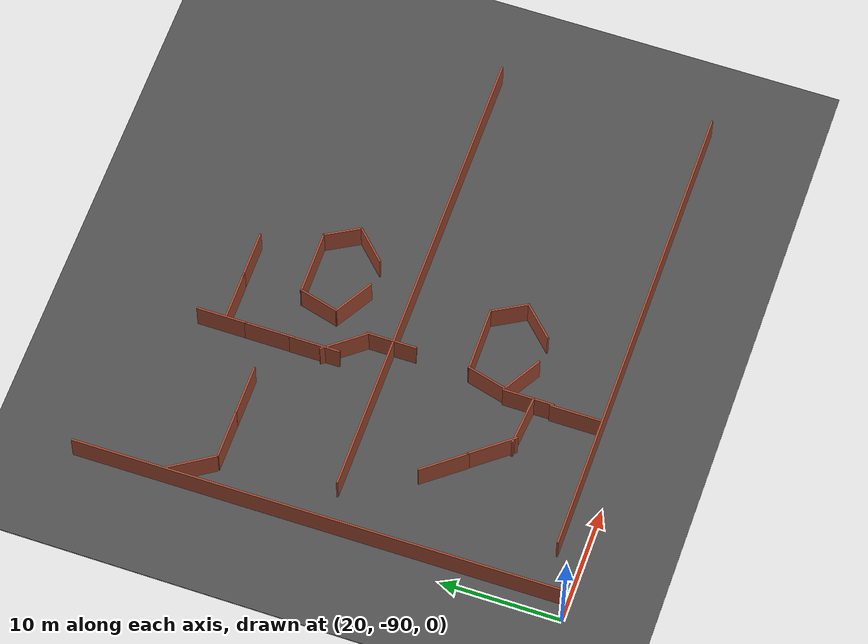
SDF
<sdf version="1.6">
 <world name="default">
  <model name="ground_plane">
   <static>1</static>
   <link name="link">
    <collision name="collision">
     <geometry><plane><normal>0 0 1</normal><size>200 200</size></plane></geometry>
     <surface><friction><ode><mu>100</mu><mu2>50</mu2></ode></friction></surface>
    </collision>
    <visual name="visual">
     <cast_shadows>0</cast_shadows>
     <geometry><plane><normal>0 0 1</normal><size>200 200</size></plane></geometry>
     <material>
      <script><uri>file://media/materials/scripts/gazebo.material</uri><name>Gazebo/Grey</name></script>
     </material>
    </visual>
   </link>
  </model>
  <model name="asphalt_plane">
   <static>1</static>
   <link name="link">
    <collision name="collision"><geometry><box><size>200 200 0.1</size></box></geometry></collision>
    <visual name="visual">
     <cast_shadows>0</cast_shadows>
     <geometry><box><size>200 200 0.1</size></box></geometry>
     <material>
      <script>
       <uri>model://asphalt_plane/materials/scripts</uri>
       <uri>model://asphalt_plane/materials/textures</uri>
       <name>vrc/asphalt</name>
      </script>
     </material>
    </visual>
   </link>
  </model>
  <model name="longwall_clone_clone_1">
   <pose>45.3217 -87.8888 0 0 -0 0</pose>
   <link name="Wall_0">
    <collision name="Wall_0_Collision">
     <geometry><box><size>40.5 0.15 2.5</size></box></geometry>
     <pose>0 0 1.25 0 -0 0</pose>
    </collision>
    <visual name="Wall_0_Visual">
     <pose>0 0 1.25 0 -0 0</pose>
     <geometry><box><size>40.5 0.15 2.5</size></box></geometry>
     <material>
      <script><uri>file://media/materials/scripts/gazebo.material</uri><name>Gazebo/Bricks</name></script>
      <ambient>1 1 1 1</ambient>
     </material>
    </visual>
    <pose>1e-06 0 0 0 -0 0</pose>
   </link>
   <static>1</static>
  </model>
  <model name="longwall_clone_clone_3_clone_1">
   <pose>21.2782 -69.4847 0 0 0 -1.56602</pose>
   <link name="Wall_0">
    <collision name="Wall_0_Collision">
     <geometry><box><size>40.5 0.15 2.5</size></box></geometry>
     <pose>0 0 1.25 0 -0 0</pose>
    </collision>
    <visual name="Wall_0_Visual">
     <pose>0 0 1.25 0 -0 0</pose>
     <geometry><box><size>40.5 0.15 2.5</size></box></geometry>
     <material>
      <script><uri>file://media/materials/scripts/gazebo.material</uri><name>Gazebo/Bricks</name></script>
      <ambient>1 1 1 1</ambient>
     </material>
    </visual>
    <pose>1e-06 0 0 0 -0 0</pose>
   </link>
   <static>1</static>
  </model>
  <model name="longwall_clone_clone_0">
   <pose>44.6402 -70.1055 0 0 -0 0</pose>
   <link name="Wall_0">
    <collision name="Wall_0_Collision">
     <geometry><box><size>40.5 0.15 2.5</size></box></geometry>
     <pose>0 0 1.25 0 -0 0</pose>
    </collision>
    <visual name="Wall_0_Visual">
     <pose>0 0 1.25 0 -0 0</pose>
     <geometry><box><size>40.5 0.15 2.5</size></box></geometry>
     <material>
      <script><uri>file://media/materials/scripts/gazebo.material</uri><name>Gazebo/Bricks</name></script>
      <ambient>1 1 1 1</ambient>
     </material>
    </visual>
    <pose>1e-06 0 0 0 -0 0</pose>
   </link>
   <static>1</static>
  </model>
  <model name="room1_clone_0">
   <pose>40.4655 -79.0163 0 0 -0 0</pose>
   <link name="Wall_11">
    <collision name="Wall_11_Collision">
     <geometry><box><size>3.25 0.15 2.5</size></box></geometry>
     <pose>0 0 1.25 0 -0 0</pose>
    </collision>
    <visual name="Wall_11_Visual">
     <pose>0 0 1.25 0 -0 0</pose>
     <geometry><box><size>3.25 0.15 2.5</size></box></geometry>
     <material>
      <script><uri>file://media/materials/scripts/gazebo.material</uri><name>Gazebo/Bricks</name></script>
      <ambient>1 1 1 1</ambient>
     </material>
    </visual>
    <pose>3.12132 1.19483 0 0 0 -1.0472</pose>
   </link>
   <link name="Wall_12">
    <collision name="Wall_12_Collision">
     <geometry><box><size>3.5 0.15 2.5</size></box></geometry>
     <pose>0 0 1.25 0 -0 0</pose>
    </collision>
    <visual name="Wall_12_Visual">
     <pose>0 0 1.25 0 -0 0</pose>
     <geometry><box><size>3.5 0.15 2.5</size></box></geometry>
     <material>
      <script><uri>file://media/materials/scripts/gazebo.material</uri><name>Gazebo/Bricks</name></script>
      <ambient>1 1 1 1</ambient>
     </material>
    </visual>
    <pose>2.71192 -1.33192 0 0 0 -2.35619</pose>
   </link>
   <link name="Wall_7">
    <collision name="Wall_7_Collision">
     <geometry><box><size>5.52935 0.15 2.5</size></box></geometry>
     <pose>0 0 1.25 0 -0 0</pose>
    </collision>
    <visual name="Wall_7_Visual">
     <pose>0 0 1.25 0 -0 0</pose>
     <geometry><box><size>5.52935 0.15 2.5</size></box></geometry>
     <material>
      <script><uri>file://media/materials/scripts/gazebo.material</uri><name>Gazebo/Bricks</name></script>
      <ambient>1 1 1 1</ambient>
     </material>
    </visual>
    <pose>-0.343285 2.51793 0 0 0 -3.13444</pose>
   </link>
   <link name="Wall_8">
    <collision name="Wall_8_Collision">
     <geometry><box><size>3.5 0.15 2.5</size></box></geometry>
     <pose>0 0 1.25 0 -0 0</pose>
    </collision>
    <visual name="Wall_8_Visual">
     <pose>0 0 1.25 0 -0 0</pose>
     <geometry><box><size>3.5 0.15 2.5</size></box></geometry>
     <material>
      <script><uri>file://media/materials/scripts/gazebo.material</uri><name>Gazebo/Bricks</name></script>
      <ambient>1 1 1 1</ambient>
     </material>
    </visual>
    <pose>-3.46641 0.880761 0 0 0 -1.8326</pose>
   </link>
   <link name="Wall_9">
    <collision name="Wall_9_Collision">
     <geometry><box><size>3.75 0.15 2.5</size></box></geometry>
     <pose>0 0 1.25 0 -0 0</pose>
    </collision>
    <visual name="Wall_9_Visual">
     <pose>0 0 1.25 0 -0 0</pose>
     <geometry><box><size>3.75 0.15 2.5</size></box></geometry>
     <material>
      <script><uri>file://media/materials/scripts/gazebo.material</uri><name>Gazebo/Bricks</name></script>
      <ambient>1 1 1 1</ambient>
     </material>
    </visual>
    <pose>-2.34109 -1.63716 0 0 0 -0.523599</pose>
   </link>
   <static>1</static>
  </model>
  <model name="worlds_1_clone_0_clone_clone_0_clone_clone_clone_4">
   <pose>29.7635 -60.5389 0 0 0 -1.57092</pose>
   <link name="Wall_0">
    <collision name="Wall_0_Collision">
     <geometry><box><size>4.25 0.15 2.5</size></box></geometry>
     <pose>0 0 1.25 0 -0 0</pose>
    </collision>
    <visual name="Wall_0_Visual">
     <pose>0 0 1.25 0 -0 0</pose>
     <geometry><box><size>4.25 0.15 2.5</size></box></geometry>
     <material>
      <script><uri>file://media/materials/scripts/gazebo.material</uri><name>Gazebo/Bricks</name></script>
      <ambient>1 1 1 1</ambient>
     </material>
    </visual>
    <pose>0 -0 0 0 -0 1.5708</pose>
   </link>
   <static>1</static>
  </model>
  <model name="worlds_1_clone_0_clone_clone_0_clone_clone_clone_5">
   <pose>25.6804 -60.5311 0 0 0 -1.57092</pose>
   <link name="Wall_0">
    <collision name="Wall_0_Collision">
     <geometry><box><size>4.25 0.15 2.5</size></box></geometry>
     <pose>0 0 1.25 0 -0 0</pose>
    </collision>
    <visual name="Wall_0_Visual">
     <pose>0 0 1.25 0 -0 0</pose>
     <geometry><box><size>4.25 0.15 2.5</size></box></geometry>
     <material>
      <script><uri>file://media/materials/scripts/gazebo.material</uri><name>Gazebo/Bricks</name></script>
      <ambient>1 1 1 1</ambient>
     </material>
    </visual>
    <pose>0 -0 0 0 -0 1.5708</pose>
   </link>
   <static>1</static>
  </model>
  <model name="worlds_1_clone_0_clone_clone_0_clone_clone_clone_6">
   <pose>22.4006 -58.7454 0 0 0 -2.56269</pose>
   <link name="Wall_0">
    <collision name="Wall_0_Collision">
     <geometry><box><size>4.25 0.15 2.5</size></box></geometry>
     <pose>0 0 1.25 0 -0 0</pose>
    </collision>
    <visual name="Wall_0_Visual">
     <pose>0 0 1.25 0 -0 0</pose>
     <geometry><box><size>4.25 0.15 2.5</size></box></geometry>
     <material>
      <script><uri>file://media/materials/scripts/gazebo.material</uri><name>Gazebo/Bricks</name></script>
      <ambient>1 1 1 1</ambient>
     </material>
    </visual>
    <pose>0 -0 0 0 -0 1.5708</pose>
   </link>
   <static>1</static>
  </model>
  <model name="worlds_2_clone_clone_clone_clone_clone_0">
   <pose>28.8699 -77.3214 0 0 -0 0.67691</pose>
   <link name="Wall_0">
    <collision name="Wall_0_Collision">
     <geometry><box><size>4.25 0.15 2.5</size></box></geometry>
     <pose>0 0 1.25 0 -0 0</pose>
    </collision>
    <visual name="Wall_0_Visual">
     <pose>0 0 1.25 0 -0 0</pose>
     <geometry><box><size>4.25 0.15 2.5</size></box></geometry>
     <material>
      <script><uri>file://media/materials/scripts/gazebo.material</uri><name>Gazebo/Bricks</name></script>
      <ambient>1 1 1 1</ambient>
     </material>
    </visual>
    <pose>0 -0 0 0 -0 1.5708</pose>
   </link>
   <static>1</static>
  </model>
  <model name="worlds_1_clone_1_clone_clone_0_clone_9_clone">
   <pose>36.2856 -85.6988 0 0 -0 0</pose>
   <link name="Wall_0">
    <collision name="Wall_0_Collision">
     <geometry><box><size>4.25 0.15 2.5</size></box></geometry>
     <pose>0 0 1.25 0 -0 0</pose>
    </collision>
    <visual name="Wall_0_Visual">
     <pose>0 0 1.25 0 -0 0</pose>
     <geometry><box><size>4.25 0.15 2.5</size></box></geometry>
     <material>
      <script><uri>file://media/materials/scripts/gazebo.material</uri><name>Gazebo/Bricks</name></script>
      <ambient>1 1 1 1</ambient>
     </material>
    </visual>
    <pose>0 -0 0 0 -0 1.5708</pose>
   </link>
   <static>1</static>
  </model>
  <model name="worlds_1_clone_1_clone_clone_0_clone_9_clone_0">
   <pose>36.4214 -81.7739 0 0 -0 0</pose>
   <link name="Wall_0">
    <collision name="Wall_0_Collision">
     <geometry><box><size>4.25 0.15 2.5</size></box></geometry>
     <pose>0 0 1.25 0 -0 0</pose>
    </collision>
    <visual name="Wall_0_Visual">
     <pose>0 0 1.25 0 -0 0</pose>
     <geometry><box><size>4.25 0.15 2.5</size></box></geometry>
     <material>
      <script><uri>file://media/materials/scripts/gazebo.material</uri><name>Gazebo/Bricks</name></script>
      <ambient>1 1 1 1</ambient>
     </material>
    </visual>
    <pose>0 -0 0 0 -0 1.5708</pose>
   </link>
   <static>1</static>
  </model>
  <model name="worlds_2_clone_clone_clone_clone_clone_1_clone">
   <pose>34.3447 -82.0215 0 0 -0 1.48429</pose>
   <link name="Wall_0">
    <collision name="Wall_0_Collision">
     <geometry><box><size>4.25 0.15 2.5</size></box></geometry>
     <pose>0 0 1.25 0 -0 0</pose>
    </collision>
    <visual name="Wall_0_Visual">
     <pose>0 0 1.25 0 -0 0</pose>
     <geometry><box><size>4.25 0.15 2.5</size></box></geometry>
     <material>
      <script><uri>file://media/materials/scripts/gazebo.material</uri><name>Gazebo/Bricks</name></script>
      <ambient>1 1 1 1</ambient>
     </material>
    </visual>
    <pose>0 -0 0 0 -0 1.5708</pose>
   </link>
   <static>1</static>
  </model>
  <model name="worlds_2_clone_clone_clone_clone_clone_1_clone_0">
   <pose>31.4278 -80.4502 0 0 -0 0.67691</pose>
   <link name="Wall_0">
    <collision name="Wall_0_Collision">
     <geometry><box><size>4.25 0.15 2.5</size></box></geometry>
     <pose>0 0 1.25 0 -0 0</pose>
    </collision>
    <visual name="Wall_0_Visual">
     <pose>0 0 1.25 0 -0 0</pose>
     <geometry><box><size>4.25 0.15 2.5</size></box></geometry>
     <material>
      <script><uri>file://media/materials/scripts/gazebo.material</uri><name>Gazebo/Bricks</name></script>
      <ambient>1 1 1 1</ambient>
     </material>
    </visual>
    <pose>0 -0 0 0 -0 1.5708</pose>
   </link>
   <static>1</static>
  </model>
  <model name="room1_clone_clone">
   <pose>42.7388 -64.1548 0 0 -0 0</pose>
   <link name="Wall_11">
    <collision name="Wall_11_Collision">
     <geometry><box><size>3.25 0.15 2.5</size></box></geometry>
     <pose>0 0 1.25 0 -0 0</pose>
    </collision>
    <visual name="Wall_11_Visual">
     <pose>0 0 1.25 0 -0 0</pose>
     <geometry><box><size>3.25 0.15 2.5</size></box></geometry>
     <material>
      <script><uri>file://media/materials/scripts/gazebo.material</uri><name>Gazebo/Bricks</name></script>
      <ambient>1 1 1 1</ambient>
     </material>
    </visual>
    <pose>3.12132 1.19483 0 0 0 -1.0472</pose>
   </link>
   <link name="Wall_12">
    <collision name="Wall_12_Collision">
     <geometry><box><size>3.5 0.15 2.5</size></box></geometry>
     <pose>0 0 1.25 0 -0 0</pose>
    </collision>
    <visual name="Wall_12_Visual">
     <pose>0 0 1.25 0 -0 0</pose>
     <geometry><box><size>3.5 0.15 2.5</size></box></geometry>
     <material>
      <script><uri>file://media/materials/scripts/gazebo.material</uri><name>Gazebo/Bricks</name></script>
      <ambient>1 1 1 1</ambient>
     </material>
    </visual>
    <pose>2.71192 -1.33192 0 0 0 -2.35619</pose>
   </link>
   <link name="Wall_7">
    <collision name="Wall_7_Collision">
     <geometry><box><size>5.52935 0.15 2.5</size></box></geometry>
     <pose>0 0 1.25 0 -0 0</pose>
    </collision>
    <visual name="Wall_7_Visual">
     <pose>0 0 1.25 0 -0 0</pose>
     <geometry><box><size>5.52935 0.15 2.5</size></box></geometry>
     <material>
      <script><uri>file://media/materials/scripts/gazebo.material</uri><name>Gazebo/Bricks</name></script>
      <ambient>1 1 1 1</ambient>
     </material>
    </visual>
    <pose>-0.343285 2.51793 0 0 0 -3.13444</pose>
   </link>
   <link name="Wall_8">
    <collision name="Wall_8_Collision">
     <geometry><box><size>3.5 0.15 2.5</size></box></geometry>
     <pose>0 0 1.25 0 -0 0</pose>
    </collision>
    <visual name="Wall_8_Visual">
     <pose>0 0 1.25 0 -0 0</pose>
     <geometry><box><size>3.5 0.15 2.5</size></box></geometry>
     <material>
      <script><uri>file://media/materials/scripts/gazebo.material</uri><name>Gazebo/Bricks</name></script>
      <ambient>1 1 1 1</ambient>
     </material>
    </visual>
    <pose>-3.46641 0.880761 0 0 0 -1.8326</pose>
   </link>
   <link name="Wall_9">
    <collision name="Wall_9_Collision">
     <geometry><box><size>3.75 0.15 2.5</size></box></geometry>
     <pose>0 0 1.25 0 -0 0</pose>
    </collision>
    <visual name="Wall_9_Visual">
     <pose>0 0 1.25 0 -0 0</pose>
     <geometry><box><size>3.75 0.15 2.5</size></box></geometry>
     <material>
      <script><uri>file://media/materials/scripts/gazebo.material</uri><name>Gazebo/Bricks</name></script>
      <ambient>1 1 1 1</ambient>
     </material>
    </visual>
    <pose>-2.34109 -1.63716 0 0 0 -0.523599</pose>
   </link>
   <static>1</static>
  </model>
  <model name="worlds_1_clone_clone_3">
   <pose>35.4226 -64.2966 0 0 -0 0</pose>
   <link name="Wall_0">
    <collision name="Wall_0_Collision">
     <geometry><box><size>4.25 0.15 2.5</size></box></geometry>
     <pose>0 0 1.25 0 -0 0</pose>
    </collision>
    <visual name="Wall_0_Visual">
     <pose>0 0 1.25 0 -0 0</pose>
     <geometry><box><size>4.25 0.15 2.5</size></box></geometry>
     <material>
      <script><uri>file://media/materials/scripts/gazebo.material</uri><name>Gazebo/Bricks</name></script>
      <ambient>1 1 1 1</ambient>
     </material>
    </visual>
    <pose>0 -0 0 0 -0 1.5708</pose>
   </link>
   <static>1</static>
  </model>
  <model name="worlds_1_clone_clone_4">
   <pose>35.442 -60.5236 0 0 -0 0</pose>
   <link name="Wall_0">
    <collision name="Wall_0_Collision">
     <geometry><box><size>4.25 0.15 2.5</size></box></geometry>
     <pose>0 0 1.25 0 -0 0</pose>
    </collision>
    <visual name="Wall_0_Visual">
     <pose>0 0 1.25 0 -0 0</pose>
     <geometry><box><size>4.25 0.15 2.5</size></box></geometry>
     <material>
      <script><uri>file://media/materials/scripts/gazebo.material</uri><name>Gazebo/Bricks</name></script>
      <ambient>1 1 1 1</ambient>
     </material>
    </visual>
    <pose>0 -0 0 0 -0 1.5708</pose>
   </link>
   <static>1</static>
  </model>
  <model name="worlds_1_clone_clone_5">
   <pose>35.4474 -56.4939 0 0 -0 0</pose>
   <link name="Wall_0">
    <collision name="Wall_0_Collision">
     <geometry><box><size>4.25 0.15 2.5</size></box></geometry>
     <pose>0 0 1.25 0 -0 0</pose>
    </collision>
    <visual name="Wall_0_Visual">
     <pose>0 0 1.25 0 -0 0</pose>
     <geometry><box><size>4.25 0.15 2.5</size></box></geometry>
     <material>
      <script><uri>file://media/materials/scripts/gazebo.material</uri><name>Gazebo/Bricks</name></script>
      <ambient>1 1 1 1</ambient>
     </material>
    </visual>
    <pose>0 -0 0 0 -0 1.5708</pose>
   </link>
   <static>1</static>
  </model>
  <model name="worlds_2_clone_clone">
   <pose>36.4746 -66.4825 0 0 -0 0.67691</pose>
   <link name="Wall_0">
    <collision name="Wall_0_Collision">
     <geometry><box><size>4.25 0.15 2.5</size></box></geometry>
     <pose>0 0 1.25 0 -0 0</pose>
    </collision>
    <visual name="Wall_0_Visual">
     <pose>0 0 1.25 0 -0 0</pose>
     <geometry><box><size>4.25 0.15 2.5</size></box></geometry>
     <material>
      <script><uri>file://media/materials/scripts/gazebo.material</uri><name>Gazebo/Bricks</name></script>
      <ambient>1 1 1 1</ambient>
     </material>
    </visual>
    <pose>0 -0 0 0 -0 1.5708</pose>
   </link>
   <static>1</static>
  </model>
  <model name="worlds_1_clone_1_clone_clone_1">
   <pose>37.7173 -69.9057 0 0 -0 0</pose>
   <link name="Wall_0">
    <collision name="Wall_0_Collision">
     <geometry><box><size>4.25 0.15 2.5</size></box></geometry>
     <pose>0 0 1.25 0 -0 0</pose>
    </collision>
    <visual name="Wall_0_Visual">
     <pose>0 0 1.25 0 -0 0</pose>
     <geometry><box><size>4.25 0.15 2.5</size></box></geometry>
     <material>
      <script><uri>file://media/materials/scripts/gazebo.material</uri><name>Gazebo/Bricks</name></script>
      <ambient>1 1 1 1</ambient>
     </material>
    </visual>
    <pose>0 -0 0 0 -0 1.5708</pose>
   </link>
   <static>1</static>
  </model>
  <model name="worlds_1_clone_0_clone_clone_0_clone_clone_0_clone_3">
   <pose>37.5549 -56.8155 0 0 0 -1.57092</pose>
   <link name="Wall_0">
    <collision name="Wall_0_Collision">
     <geometry><box><size>4.25 0.15 2.5</size></box></geometry>
     <pose>0 0 1.25 0 -0 0</pose>
    </collision>
    <visual name="Wall_0_Visual">
     <pose>0 0 1.25 0 -0 0</pose>
     <geometry><box><size>4.25 0.15 2.5</size></box></geometry>
     <material>
      <script><uri>file://media/materials/scripts/gazebo.material</uri><name>Gazebo/Bricks</name></script>
      <ambient>1 1 1 1</ambient>
     </material>
    </visual>
    <pose>0 -0 0 0 -0 1.5708</pose>
   </link>
   <static>1</static>
  </model>
  <model name="worlds_1_clone_0_clone_clone_0_clone_clone_0_clone_4">
   <pose>41.3635 -56.8009 0 0 0 -1.57092</pose>
   <link name="Wall_0">
    <collision name="Wall_0_Collision">
     <geometry><box><size>4.25 0.15 2.5</size></box></geometry>
     <pose>0 0 1.25 0 -0 0</pose>
    </collision>
    <visual name="Wall_0_Visual">
     <pose>0 0 1.25 0 -0 0</pose>
     <geometry><box><size>4.25 0.15 2.5</size></box></geometry>
     <material>
      <script><uri>file://media/materials/scripts/gazebo.material</uri><name>Gazebo/Bricks</name></script>
      <ambient>1 1 1 1</ambient>
     </material>
    </visual>
    <pose>0 -0 0 0 -0 1.5708</pose>
   </link>
   <static>1</static>
  </model>
 </world>
</sdf>
